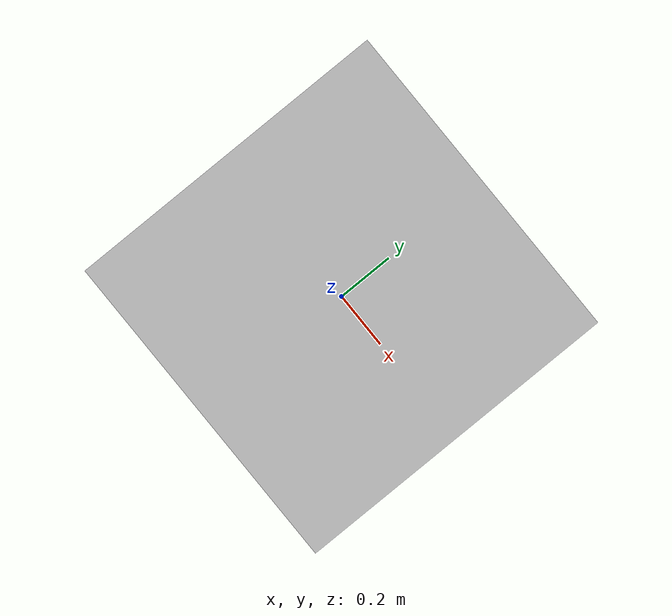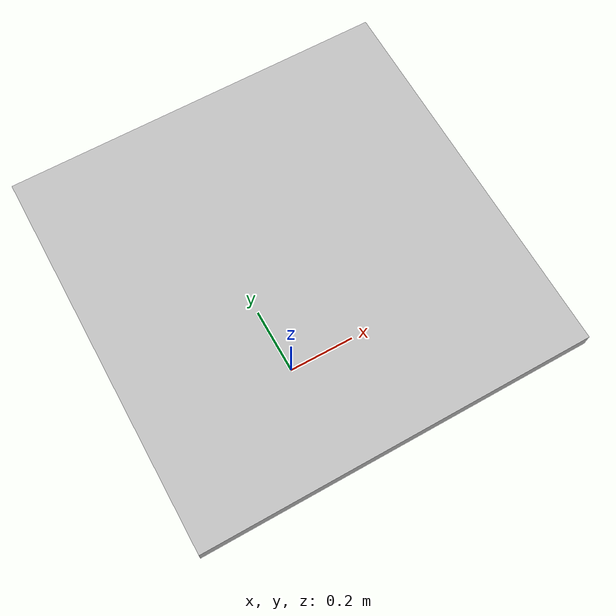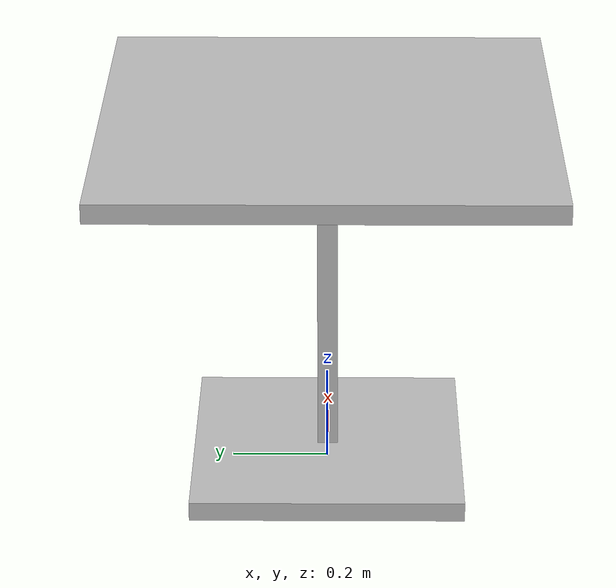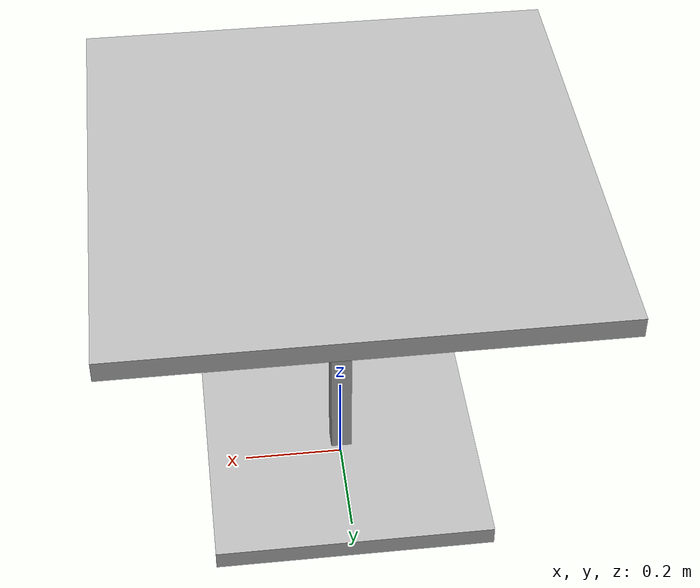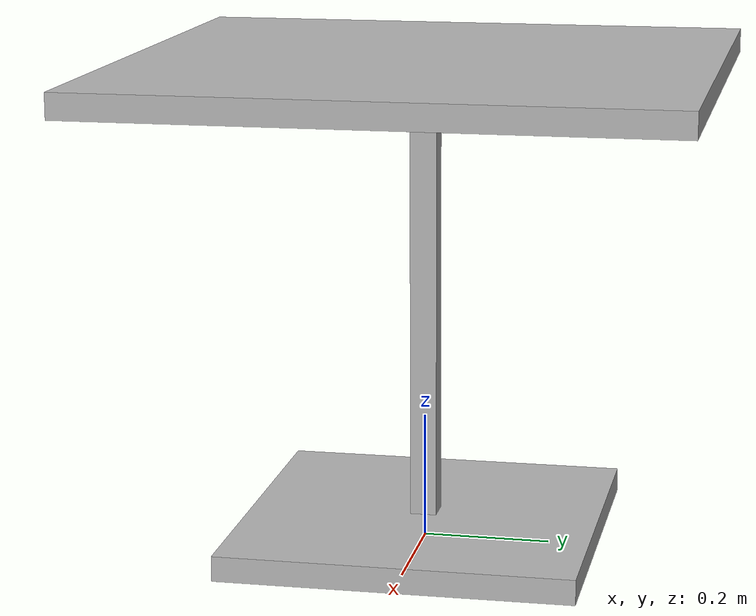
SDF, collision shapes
<?xml version='1.0'?>
<sdf version='1.6'>
  <model name='coffee_table'>
    <model name='cafe_table'>
      <static>1</static>
      <link name='link'>
        <collision name='surface'>
          <pose frame=''>0 0 0.755 0 -0 0</pose>
          <geometry>
            <box>
              <size>0.913 0.913 0.04</size>
            </box>
          </geometry>
        </collision>
        <collision name='column'>
          <pose frame=''>0 0 0.37 0 -0 0</pose>
          <geometry>
            <box>
              <size>0.042 0.042 0.74</size>
            </box>
          </geometry>
        </collision>
        <collision name='base'>
          <pose frame=''>0 0 0.02 0 -0 0</pose>
          <geometry>
            <box>
              <size>0.56 0.56 0.04</size>
            </box>
          </geometry>
        </collision>
        <visual name='visual'>
          <geometry>
            <mesh>
              <uri>model://cafe_table/meshes/cafe_table.dae</uri>
            </mesh>
          </geometry>
        </visual>
      </link>
      <pose frame=''>0 5e-06 0 0 -0 0</pose>
    </model>
    <static>0</static>
    <allow_auto_disable>1</allow_auto_disable>
  </model>
</sdf>
